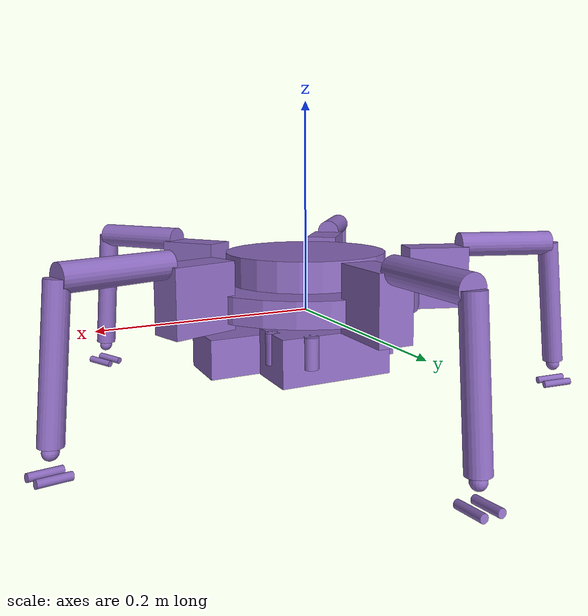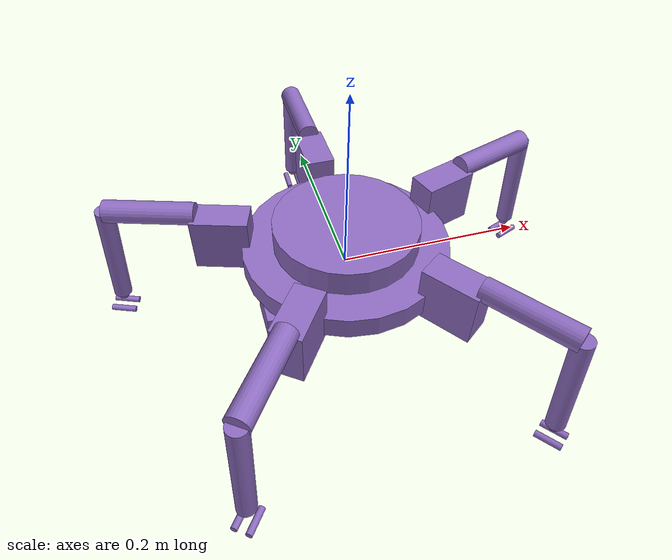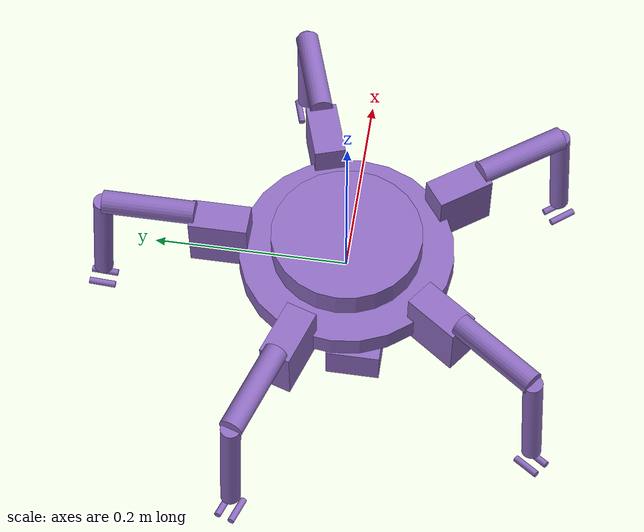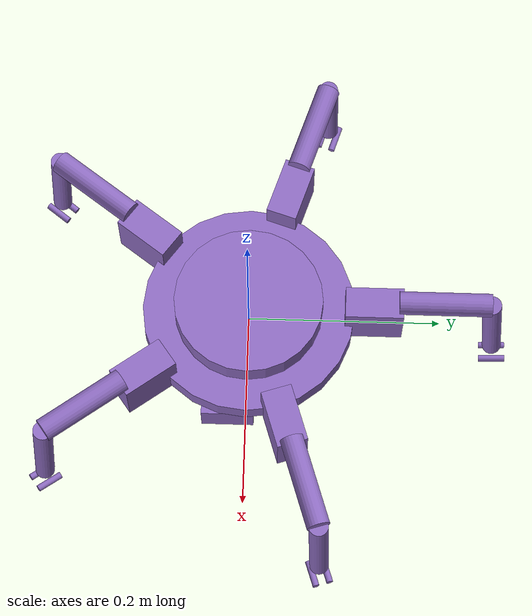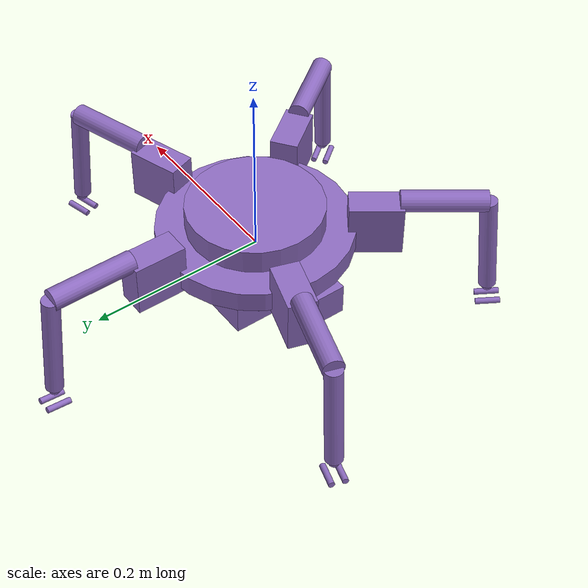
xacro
<?xml version="1.0"?>
<!-- AUTO-GENERATED from cad/params.yaml by generate_urdf.py — edit THAT, not this -->
<robot xmlns:xacro="http://www.ros.org/wiki/xacro" name="pebble">
  <material name="pebble"><color rgba="0.55 0.42 0.75 1"/></material>

  <link name="base_link">
    <inertial><origin xyz="-0.002210 -0.004630 -0.003180"/><mass value="1.5550"/><inertia ixx="4.726687e-03" ixy="-9.472300e-05" ixz="-1.576910e-04" iyy="5.545358e-03" iyz="-2.392510e-04" izz="6.800901e-03"/></inertial>
    <visual><origin xyz="0 0 0.018"/>
      <geometry><cylinder radius="0.1100" length="0.024"/></geometry>
      <material name="pebble"/></visual>
    <visual><origin xyz="0 0 0.044"/>
      <geometry><cylinder radius="0.0770" length="0.028"/></geometry>
      <material name="pebble"/></visual>
    <collision><origin xyz="0 0 0.018"/>
      <geometry><cylinder radius="0.1100" length="0.024"/></geometry></collision>
    <collision><origin xyz="0 0 0.044"/>
      <geometry><cylinder radius="0.0770" length="0.028"/></geometry></collision>
    <visual name="belly_tub"><origin xyz="0.001200 -0.020000 -0.036700"/>
      <geometry><box size="0.197400 0.054800 0.037400"/></geometry>
      <material name="pebble"/></visual>
    <collision name="belly_tub"><origin xyz="0.001200 -0.020000 -0.036700"/>
      <geometry><box size="0.197400 0.054800 0.037400"/></geometry></collision>
    <visual name="belly_shelf"><origin xyz="-0.001125 0.038250 -0.032200"/>
      <geometry><box size="0.110150 0.052100 0.044400"/></geometry>
      <material name="pebble"/></visual>
    <collision name="belly_shelf"><origin xyz="-0.001125 0.038250 -0.032200"/>
      <geometry><box size="0.110150 0.052100 0.044400"/></geometry></collision>
    <visual name="belly_shelf_post0"><origin xyz="-0.050000 0.034000 -0.024650"/>
      <geometry><cylinder radius="0.007000" length="0.029300"/></geometry>
      <material name="pebble"/></visual>
    <collision name="belly_shelf_post0"><origin xyz="-0.050000 0.034000 -0.024650"/>
      <geometry><cylinder radius="0.007000" length="0.029300"/></geometry></collision>
    <visual name="belly_shelf_post1"><origin xyz="0.050000 0.034000 -0.024650"/>
      <geometry><cylinder radius="0.007000" length="0.029300"/></geometry>
      <material name="pebble"/></visual>
    <collision name="belly_shelf_post1"><origin xyz="0.050000 0.034000 -0.024650"/>
      <geometry><cylinder radius="0.007000" length="0.029300"/></geometry></collision>
    <visual name="belly_shelf_post2"><origin xyz="0.026000 0.064000 -0.024650"/>
      <geometry><cylinder radius="0.007000" length="0.029300"/></geometry>
      <material name="pebble"/></visual>
    <collision name="belly_shelf_post2"><origin xyz="0.026000 0.064000 -0.024650"/>
      <geometry><cylinder radius="0.007000" length="0.029300"/></geometry></collision>
  </link>

  <xacro:macro name="pebble_leg" params="i angle">
    <link name="coxa${i}">
      <inertial><origin xyz="0.020000 0.000000 0.030000"/><mass value="0.0839"/><inertia ixx="3.233e-05" ixy="0" ixz="0" iyy="5.034e-05" iyz="0" izz="3.233e-05"/></inertial>
      <visual><origin xyz="0.020 0 0.030"/>
        <geometry><box size="0.060 0.032 0.060"/></geometry>
        <material name="pebble"/></visual>
      <collision><origin xyz="0.020 0 0.030"/>
        <geometry><box size="0.060 0.032 0.060"/></geometry></collision>
    </link>
    <joint name="yaw${i}" type="revolute">
      <parent link="base_link"/><child link="coxa${i}"/>
      <origin xyz="${0.1100*cos(angle)} ${0.1100*sin(angle)} 0"
              rpy="0 0 ${angle}"/>
      <axis xyz="0 0 1"/>
      <limit lower="-0.698132" upper="0.698132"
             effort="2.9400" velocity="4.7"/>
      <dynamics damping="0.6255"/>
    </joint>

    <link name="femur${i}">
      <inertial><origin xyz="0.047500 0.000000 0.000000"/><mass value="0.0427"/><inertia ixx="3.074e-06" ixy="0" ixz="0" iyy="3.365e-05" iyz="0" izz="3.365e-05"/></inertial>
      <visual><origin xyz="0.0475 0 0" rpy="0 1.570796 0"/>
        <geometry><cylinder radius="0.012" length="0.0950"/></geometry>
        <material name="pebble"/></visual>
      <collision><origin xyz="0.0475 0 0" rpy="0 1.570796 0"/>
        <geometry><cylinder radius="0.012" length="0.0950"/></geometry></collision>
    </link>
    <joint name="hip${i}" type="revolute">
      <parent link="coxa${i}"/><child link="femur${i}"/>
      <origin xyz="0.0450 0 0.0610"/>
      <axis xyz="0 -1 0"/>
      <limit lower="-1.221730" upper="1.570796"
             effort="2.9400" velocity="4.7"/>
      <dynamics damping="0.6255"/>
    </joint>

    <link name="tibia${i}">
      <inertial><origin xyz="0.062100 0.000000 0.000000"/><mass value="0.0837"/><inertia ixx="4.185e-06" ixy="0" ixz="0" iyy="1.097e-04" iyz="0" izz="1.097e-04"/></inertial>
      <visual><origin xyz="0.0621 0 0" rpy="0 1.570796 0"/>
        <geometry><cylinder radius="0.010" length="0.1242"/></geometry>
        <material name="pebble"/></visual>
      <collision><origin xyz="0.0621 0 0" rpy="0 1.570796 0"/>
        <geometry><cylinder radius="0.010" length="0.1242"/></geometry></collision>
    </link>
    <joint name="knee${i}" type="revolute">
      <parent link="femur${i}"/><child link="tibia${i}"/>
      <origin xyz="0.0950 0 0"/>
      <axis xyz="0 -1 0"/>
      <limit lower="-2.617994" upper="-0.349066"
             effort="2.9400" velocity="4.7"/>
      <dynamics damping="0.6255"/>
    </joint>

    <link name="foot${i}">
      <inertial><origin xyz="-0.006500 0.000000 0.000000"/><mass value="0.043300000000000005"/><inertia ixx="6.642e-07" ixy="0" ixz="0" iyy="6.642e-07" iyz="0" izz="6.642e-07"/></inertial>  <!-- + fixed claw prong (MJCF parity) -->
      <visual><origin xyz="-0.0065 0 0"/><geometry><sphere radius="0.0065"/></geometry>
        <material name="pebble"/></visual>
      <visual><origin xyz="0.012 0.0075 0" rpy="0 0 0.28"/>
        <geometry><cylinder radius="0.0035" length="0.028"/></geometry>
        <material name="pebble"/></visual>
      <collision><origin xyz="-0.0065 0 0"/><geometry><sphere radius="0.0065"/></geometry></collision>
    </link>
    <joint name="foot_fix${i}" type="fixed">
      <parent link="tibia${i}"/><child link="foot${i}"/>
      <origin xyz="0.1350 0 0"/>
    </joint>

    <link name="claw${i}_link">
      <inertial><origin xyz="0.000000 0.000000 0.000000"/><mass value="0.004"/><inertia ixx="1.000e-07" ixy="0" ixz="0" iyy="1.000e-07" iyz="0" izz="1.000e-07"/></inertial>
      <visual><origin xyz="0.012 -0.0075 0" rpy="0 0 -0.28"/>
        <geometry><cylinder radius="0.0035" length="0.028"/></geometry>
        <material name="pebble"/></visual>
    </link>
    <joint name="claw${i}" type="revolute">
      <parent link="foot${i}"/><child link="claw${i}_link"/>
      <origin xyz="0 0 0"/>
      <axis xyz="0 0 1"/>
      <limit lower="0.000000" upper="0.959931"
             effort="0.2300" velocity="9.5"/>
      <dynamics damping="0.0242"/>
    </joint>
  </xacro:macro>

  <xacro:pebble_leg i="0" angle="${radians(90)}"/>
  <xacro:pebble_leg i="1" angle="${radians(162)}"/>
  <xacro:pebble_leg i="2" angle="${radians(234)}"/>
  <xacro:pebble_leg i="3" angle="${radians(306)}"/>
  <xacro:pebble_leg i="4" angle="${radians(378)}"/>

  <xacro:include filename="$(find rocky_description)/urdf/rocky.ros2_control.xacro"/>
</robot>
